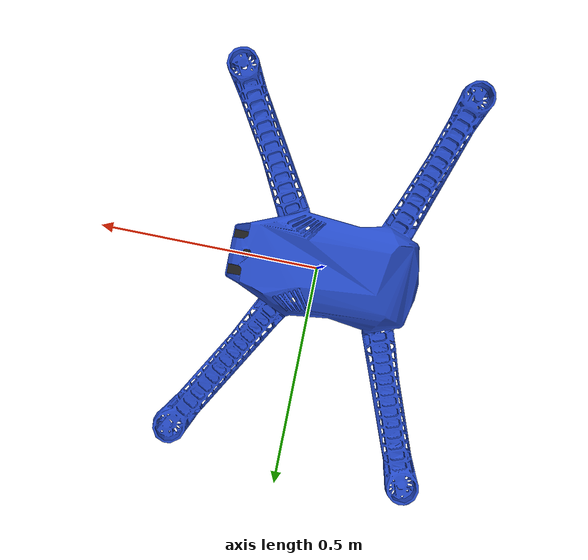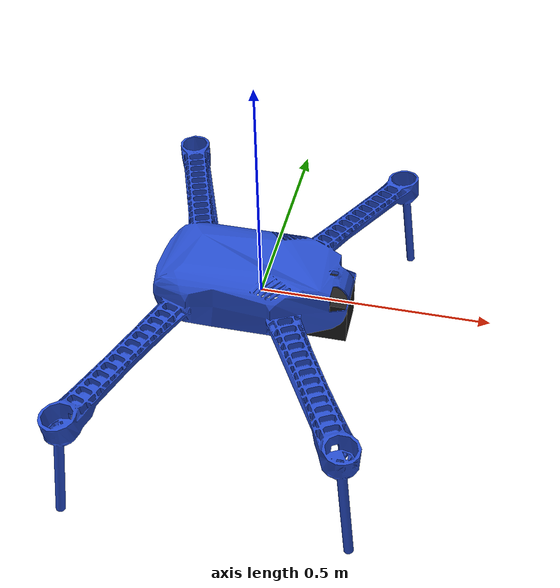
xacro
<?xml version="1.0"?>
<robot
  name="iris"
  xmlns:xacro="http://ros.org/wiki/xacro"
>

	<xacro:include filename="iris_base.urdf.xacro" />
	<xacro:iris_base name="iris_base">
		<origin xyz="0 0 0" rpy="0 0 0"/>
	</xacro:iris_base>

	<!-- laser Range Finder -->
	<xacro:include filename="generic_laser.urdf.xacro" />
	<xacro:generic_laser
		name="hokuyo"
		parent="base_link"
		size_x="0.1" size_y="0.1" size_z="0.1"
		ros_topic="hokuyo"
		visualize_laser="true"
		update_rate="30"
		samples="720"
		min_angle="-1.570796"
		max_angle="1.570796"
		range_min="0.1"
		range_max="30.0"
		range_res="0.01"
		noise_mean="0.0"
		noise_stddv="0.01">
		<origin xyz="0.15 0.0 -0.02" rpy="0 ${M_PI/2} 0"/>
	</xacro:generic_laser>

	<!-- Sonar Range Finder -->

</robot>

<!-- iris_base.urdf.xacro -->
<robot name="iris"  xmlns:xacro="http://ros.org/wiki/xacro">

	<xacro:macro name="iris_base" params="name">

		<link name="base_link">
			<collision name='body'>
				<geometry>
					<mesh filename="package://uri_gazebo/meshes/iris_collision.dae" scale="1 1 1" />
				</geometry>
			</collision>
			<visual name='body'>
				<geometry>
					<mesh filename="package://uri_gazebo/meshes/iris.dae" scale="1 1 1" />
				</geometry>
			</visual>
		</link>

		<gazebo reference="base_link">
			<material>URI/Blue</material>
		</gazebo>
	</xacro:macro>

</robot>

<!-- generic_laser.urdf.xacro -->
<robot xmlns:xacro="http://www.ros.org/wiki/xacro">

<xacro:property name="M_PI" value="3.1415926535897931" />

<xacro:macro name="generic_laser" params="name parent *origin
						 ros_topic
						 size_x size_y size_z
						 update_rate
						 samples
						 min_angle
						 max_angle
						 range_min
						 range_max
						 range_res
						 visualize_laser
						 noise_mean
						 noise_stddv">
	<joint name="${name}_joint" type="fixed">
		<xacro:insert_block name="origin" />
		<parent link="${parent}"/>
		<child link="${name}_link"/>
	</joint>

	<link name="${name}_link">
		<inertial>
			<mass value="0.001" />
			<origin xyz="0 0 0" rpy="0 0 0" />
			<inertia ixx="0.0001" ixy="0" ixz="0" iyy="0.0001" iyz="0" izz="0.0001" />
		</inertial>
		<visual>
			<origin xyz="0 0 0" rpy="0 0 0" />
			<geometry>
				<box size="${size_x} ${size_y} ${size_z}" />
			</geometry>
		</visual>
		<collision>
			<origin xyz="0 0 0" rpy="0 0 0" />
			<geometry>
				<box size="${size_x} ${size_y} ${size_z}" />
			</geometry>
		</collision>
	</link>

	<gazebo reference="${name}_link">
		<material>URI/Black</material>
    <sensor type="gpu_ray" name="head_hokuyo_sensor">
      <pose>0 0 0 0 0 0</pose>
      <visualize>${visualize_laser}</visualize>
      <update_rate>${update_rate}</update_rate>
      <ray>
        <scan>
          <horizontal>
            <samples>${samples}</samples>
            <resolution>1</resolution>
            <min_angle>${min_angle}</min_angle>
            <max_angle>${max_angle}</max_angle>
          </horizontal>
        </scan>
        <range>
          <min>${range_min}</min>
          <max>${range_max}</max>
          <resolution>${range_res}</resolution>
        </range>
        <noise>
          <type>gaussian</type>
          <mean>${noise_mean}</mean>
          <stddev>${noise_stddv}</stddev>
        </noise>
      </ray>
      <plugin name="gazebo_ros_head_hokuyo_controller" filename="libgazebo_ros_gpu_laser.so">
        <topicName>${ros_topic}</topicName>
        <frameName>${name}_link</frameName>
      </plugin>
    </sensor>
	</gazebo>
</xacro:macro>

</robot>
